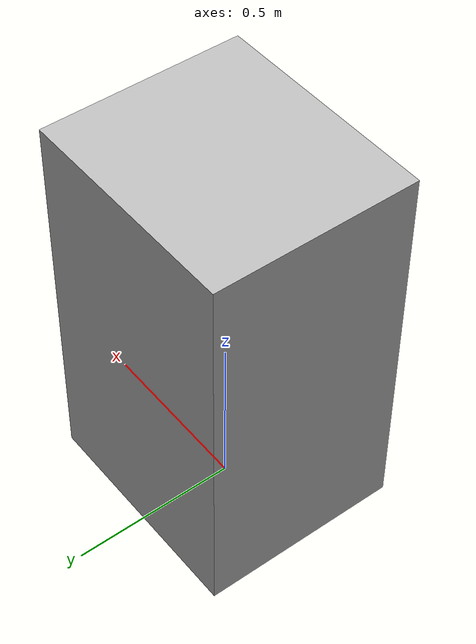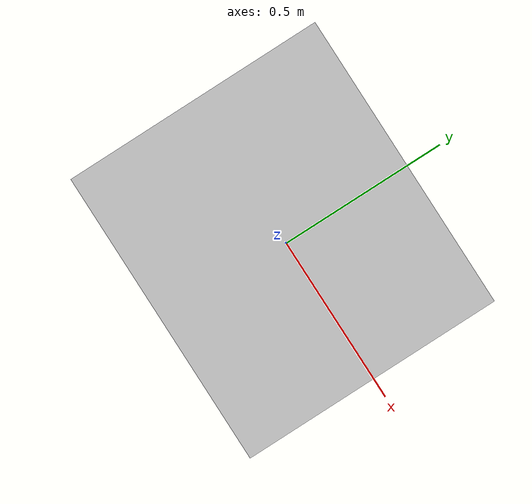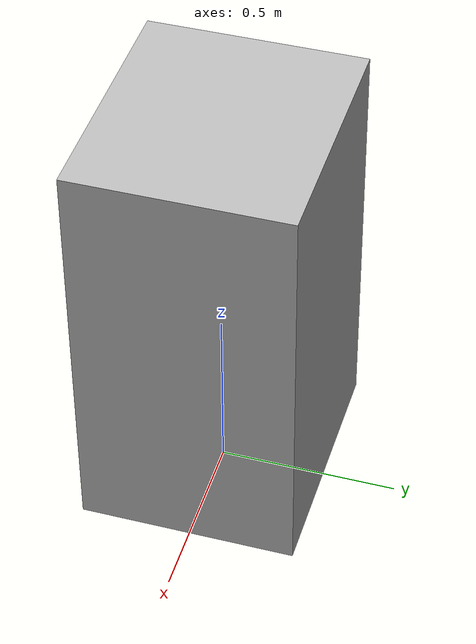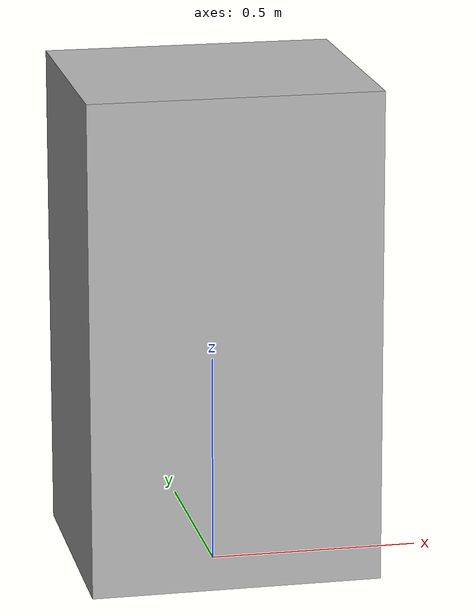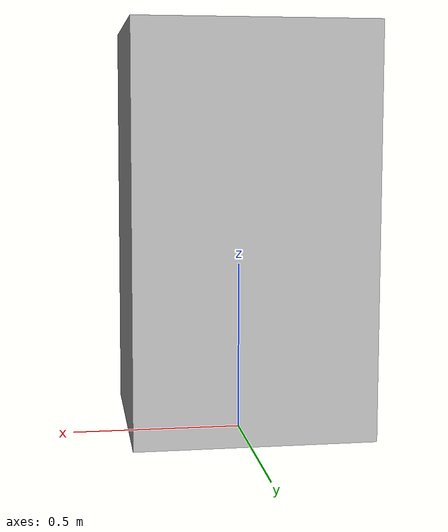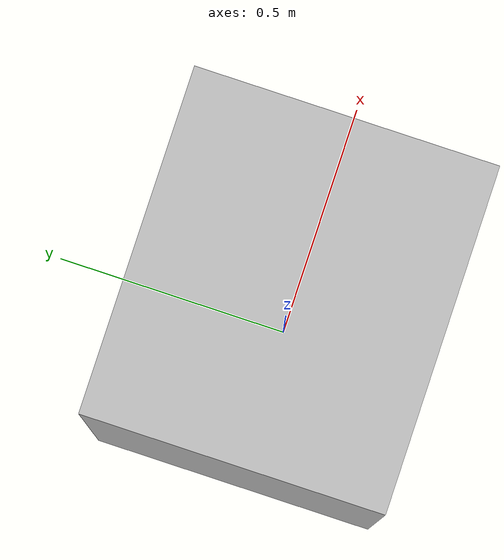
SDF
<?xml version="1.0" ?>
<sdf version="1.6">
  <model name="clf_tiago_box">
    <static>true</static>
    <link name="link">
      <collision name="collision">
        <geometry>
          <mesh>
            <uri>model://clf_tiago_box/meshes/tiago_box_collision.dae</uri>
          </mesh>
        </geometry>
      </collision>
      <visual name="visual">
        <geometry>
          <mesh>
            <uri>model://clf_tiago_box/meshes/tiago_box.dae</uri>
          </mesh>
        </geometry>
      </visual>
    </link>
  </model>
</sdf>
